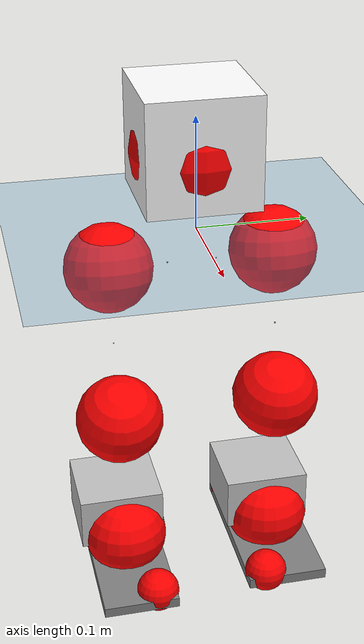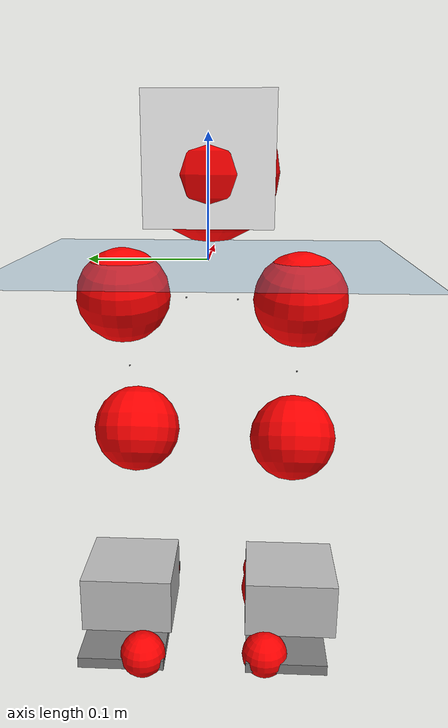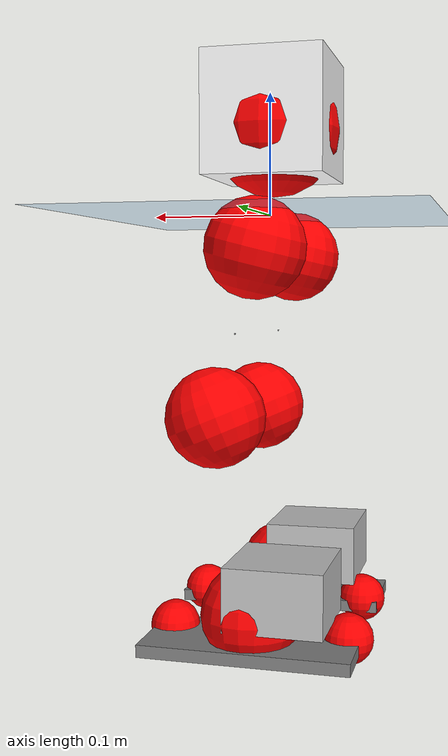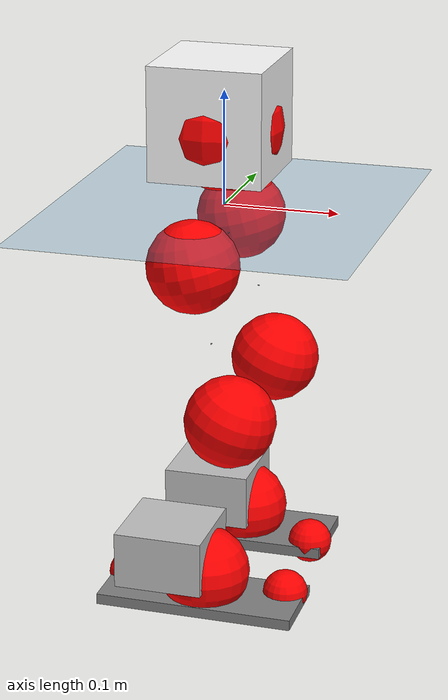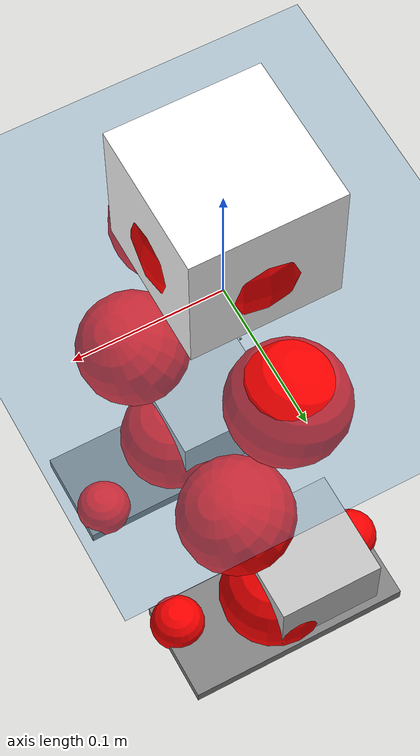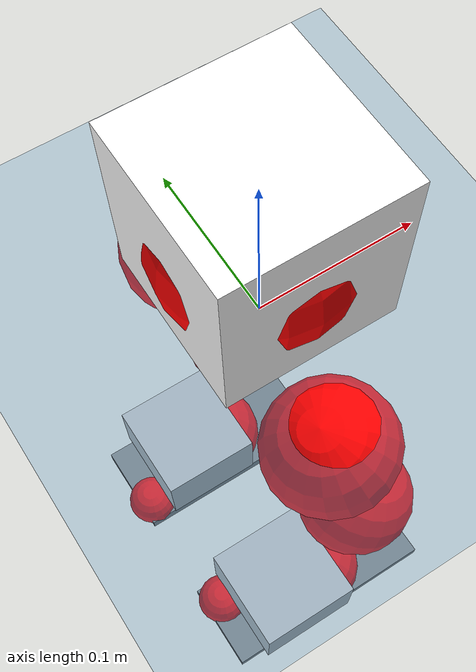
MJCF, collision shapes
<mujoco model="pi_12dof_release_v1">
  <compiler angle="radian" assetdir="assets" balanceinertia="true" inertiafromgeom="false"/>

  <option timestep="0.005" density="1.2" viscosity="2e-05"/>

  <size nkey="1"/>

  <visual>
    <quality shadowsize="8192"/>
    <map shadowclip="0.5"/>
  </visual>

  <default>
    <default class="/">
      <joint armature="0.01" damping="0.01" frictionloss="0.01"/>
      <geom contype="0" conaffinity="0" group="1" solref="-1000 -80"/>
      <site size="0.01 0.005 0.005" group="5"/>
      <general forcelimited="true" biastype="affine" gainprm="20" biasprm="0 -20 -0.5"/>
      <default class="foot">
        <geom size="0.0845 0.036 0.005" type="box" condim="6" group="4" priority="1" friction="0.9 0.2 0.2" solimp="0.015 1 0.005"/>
      </default>
      <default class="reward_collision_sphere">
        <geom group="5" rgba="1 0 0 1"/>
      </default>
    </default>
  </default>

  <asset>
    <texture type="skybox" colorspace="auto" name="//unnamed_texture_0" builtin="gradient" rgb1="0.95 0.95 0.95" rgb2="0.95 0.95 0.95" width="100" height="600"/>
    <texture type="2d" colorspace="auto" name="texplane" builtin="checker" rgb1="0.345 0.575 0.748" rgb2="0.345 0.575 0.748" markrgb="1 1 1" width="512" height="512"/>
    <material name="MatPlane" class="/" texture="texplane" texuniform="true" texrepeat="2 2" specular="0.9"/>
    <mesh name="baselink_1" class="/" file="baselink_1.STL"/>
    <mesh name="r_hip_pitch_link" class="/" file="r_hip_pitch_link.STL"/>
    <mesh name="r_hip_roll_link" class="/" file="r_hip_roll_link.STL"/>
    <mesh name="r_thigh_link" class="/" file="r_thigh_link.STL"/>
    <mesh name="r_calf_link" class="/" file="r_calf_link.STL"/>
    <mesh name="r_ankle_pitch_link" class="/" file="r_ankle_pitch_link.STL"/>
    <mesh name="r_ankle_roll_link" class="/" file="r_ankle_roll_link.STL"/>
    <mesh name="l_hip_pitch_link" class="/" file="l_hip_pitch_link.STL"/>
    <mesh name="l_hip_roll_link" class="/" file="l_hip_roll_link.STL"/>
    <mesh name="l_thigh_link" class="/" file="l_thigh_link.STL"/>
    <mesh name="l_calf_link" class="/" file="l_calf_link.STL"/>
    <mesh name="l_ankle_pitch_link" class="/" file="l_ankle_pitch_link.STL"/>
    <mesh name="l_ankle_roll_link" class="/" file="l_ankle_roll_link.STL"/>
  </asset>

  <worldbody>
    <geom name="floor" class="/" size="100 100 0.125" type="plane" group="0" material="MatPlane"/>
    <light name="toplight_shadow" class="/" pos="0 0 5" dir="0.0990148 0.0990148 -0.990148" type="directional" ambient="0.04 0.04 0.04" diffuse="0.55 0.55 0.55" specular="0.12 0.12 0.12"/>
    <light name="toplight_fill" class="/" pos="0 0 5" dir="0.0990148 0.0990148 -0.990148" type="directional" castshadow="false" ambient="0.04 0.04 0.04" diffuse="0.3 0.3 0.3" specular="0.08 0.08 0.08"/>
    <body name="trunk" pos="-0.00263948 -0.00234987 -0.000179137" quat="0.999999 0.00102221 9.93698e-05 0.000889017">
      <inertial pos="-5.82343e-05 0.00022092 0.039682" quat="0.695497 0.00923829 0.00929009 0.71841" mass="2.05345" diaginertia="0.0124041 0.005871 0.0041767"/>
      <joint name="//unnamed_joint_0" type="free"/>
      <geom name="//unnamed_geom_1" class="/" type="mesh" density="0" rgba="1 1 1 1" mesh="baselink_1"/>
      <geom name="//unnamed_geom_2" class="/" size="0.0493815 0.0493815 0.0493815" pos="0 0 0.0796137" type="box" rgba="1 1 1 1"/>
      <geom name="//unnamed_geom_3" class="reward_collision_sphere" size="0.0543196" pos="0 0 0.069662"/>
      <site name="imu" class="/" pos="0.00272683 -0.000296546 0.00384478" size="0.0098763"/>
      <camera name="track" class="/" pos="0 -1.83917 0" quat="0.707107 0.707107 0 0" mode="trackcom"/>
      <camera name="ego_camera" class="/" pos="0.07861 0 0.179131" quat="-0.5 -0.5 0.5 0.5"/>
      <body name="r_hip_pitch_link" pos="-0.00153289 -0.0223576 -0.0317611" quat="0.992338 -0.000284634 -0.123551 -0.000616897">
        <inertial pos="-0.00137774 -0.0534398 -0.000808257" quat="-0.0181765 0.705968 -0.0290434 0.707414" mass="0.372724" diaginertia="0.000143892 6.44474e-05 8.54073e-05"/>
        <joint name="r_hip_pitch_joint" class="/" pos="0 0 0" axis="-0.00108557 -0.999974 -0.00707432" range="-1.7458 1.24063" armature="0.00993048" damping="0.00871424" frictionloss="0.0110662"/>
        <geom name="//unnamed_geom_4" class="/" type="mesh" density="0" rgba="0.75294 0.75294 0.75294 1" mesh="r_hip_pitch_link"/>
        <geom name="//unnamed_geom_5" class="/" size="0.000493815 0.000493815 0.000493815" type="box" rgba="0.75294 0.75294 0.75294 1"/>
        <body name="r_hip_roll_link" pos="-2.07948e-05 -0.0522743 0.00032949" quat="1 6.19913e-06 -2.34883e-05 -1.15276e-05">
          <inertial pos="0.000935197 -0.000431191 -0.0581555" quat="0.705978 -0.0792704 -0.0825595 0.698925" mass="0.378191" diaginertia="0.000424418 0.000180933 0.000125094"/>
          <joint name="r_hip_roll_joint" class="/" pos="0 0 0" axis="-0.999999 0.000717426 -0.000734831" stiffness="0.00865469" range="-0.174907 0.51842" armature="0.00840223" damping="0" frictionloss="0.0101243"/>
          <geom name="//unnamed_geom_6" class="/" type="mesh" density="0" rgba="0.75294 0.75294 0.75294 1" mesh="r_hip_roll_link"/>
          <geom name="//unnamed_geom_7" class="/" size="0.000493815 0.000493815 0.000493815" type="box" rgba="0.75294 0.75294 0.75294 1"/>
          <geom name="//unnamed_geom_8" class="reward_collision_sphere" size="0.0395052"/>
          <body name="r_thigh_link" pos="-0.00105463 -0.00021366 -0.0680733" quat="0.999999 0.000735138 0.000762341 0.000113627">
            <inertial pos="0.00202172 0.00166558 -0.0497021" quat="0.739941 0.67254 -0.00967341 -0.00915601" mass="0.107494" diaginertia="0.000158636 6.30748e-05 5.49394e-05"/>
            <joint name="r_thigh_joint" class="/" pos="0 0 0" axis="-0.00157291 -0.0111663 -0.999936" range="-0.304985 0.636284" armature="0.00848429" damping="0.00666071" frictionloss="0.00980243"/>
            <geom name="//unnamed_geom_9" class="/" type="mesh" density="0" rgba="0.75294 0.75294 0.75294 1" mesh="r_thigh_link"/>
            <geom name="//unnamed_geom_10" class="/" size="0.000493815 0.000493815 0.000493815" type="box" rgba="0.75294 0.75294 0.75294 1"/>
            <body name="r_calf_link" pos="-0.000924367 0.00037464 -0.0707179" quat="0.947706 -0.000210957 0.319143 -0.000300829">
              <inertial pos="0.00224471 -0.00144744 -0.0696065" quat="0.999982 -0.00419502 0.00119985 0.00401023" mass="0.827562" diaginertia="0.00463986 0.00239886 0.000170935"/>
              <joint name="r_calf_joint" class="/" pos="0 0 0" axis="0.000289892 -0.999998 -0.0021279" stiffness="0.0114255" range="-1.65478 0.592195" armature="0.0111717" damping="1.76769e-05" frictionloss="0.011071"/>
              <geom name="//unnamed_geom_11" class="/" type="mesh" density="0" rgba="0.75294 0.75294 0.75294 1" mesh="r_calf_link"/>
              <geom name="//unnamed_geom_12" class="/" size="0.000493815 0.000493815 0.000493815" type="box" rgba="0.75294 0.75294 0.75294 1"/>
              <geom name="//unnamed_geom_13" class="reward_collision_sphere" size="0.0395052"/>
              <body name="r_ankle_pitch_link" pos="-0.000973011 0.00156326 -0.136497" quat="0.980242 0.000357008 -0.197797 0.000998191">
                <inertial pos="0.00254419 0.000977995 0.000354465" quat="0.00375949 0.707774 -0.00627689 0.706401" mass="0.164538" diaginertia="0.0003901 0.000144931 0.000113091"/>
                <joint name="r_ankle_pitch_joint" class="/" pos="0 0 0" axis="0.0037016 -0.999915 0.0125002" range="-1.35137 0.553476" armature="0.0104519" damping="0.00827169" frictionloss="0.00876176"/>
                <geom name="//unnamed_geom_14" class="/" type="mesh" density="0" rgba="0.75294 0.75294 0.75294 1" mesh="r_ankle_pitch_link"/>
                <geom name="//unnamed_geom_15" class="/" size="0.0385176 0.0395052 0.0246907" type="box" rgba="0.75294 0.75294 0.75294 1"/>
                <body name="r_ankle_roll_link" pos="0.0823088 0.003548 -1.27819e-05" quat="1 -0.000129976 4.91592e-05 -4.80075e-06">
                  <inertial pos="-0.0233287 1.09566e-05 -0.0138228" quat="0.563305 0.429103 0.43452 0.556553" mass="0.51157" diaginertia="0.00153198 0.000679977 0.000287262"/>
                  <joint name="r_ankle_roll_joint" class="/" pos="0 0 0" axis="-0.999946 -0.0103858 0.000936859" range="-0.143585 0.0960013" armature="0.00921594" damping="0" frictionloss="0.010114"/>
                  <geom name="//unnamed_geom_16" class="/" type="mesh" density="0" rgba="0.75294 0.75294 0.75294 1" mesh="r_ankle_roll_link"/>
                  <geom name="//unnamed_geom_17" class="/" type="mesh" rgba="0.75294 0.75294 0.75294 1" mesh="r_ankle_roll_link"/>
                  <geom name="right_foot" class="foot" size="0.0869349 0.0348838 0.00466215" pos="-0.0534548 0 -0.0437876"/>
                  <geom name="//unnamed_geom_19" class="reward_collision_sphere" size="0.0395052" pos="-0.0524067 0 -0.0199034"/>
                  <geom name="//unnamed_geom_20" class="reward_collision_sphere" size="0.0197526" pos="0.015722 0.0183917 -0.0398069"/>
                  <geom name="//unnamed_geom_21" class="reward_collision_sphere" size="0.0197526" pos="-0.125776 0.0183917 -0.0398069"/>
                  <site name="right_foot" class="foot" pos="-0.0534548 0 -0.0437876" size="0.0098763"/>
                </body>
              </body>
            </body>
          </body>
        </body>
      </body>
      <body name="l_hip_pitch_link" pos="0.000985936 0.02079 -0.0308062" quat="0.992114 0.000320051 -0.125334 0.000624865">
        <inertial pos="0.00350619 0.0505004 0.000271722" quat="-0.0386353 0.705615 0.0295573 0.706924" mass="0.371993" diaginertia="0.000162828 7.15326e-05 9.97339e-05"/>
        <joint name="l_hip_pitch_joint" class="/" pos="0 0 0" axis="-0.00200717 0.999991 0.00368236" range="-1.21299 1.76321" armature="0.0111637" damping="0" frictionloss="0.0100969"/>
        <geom name="//unnamed_geom_22" class="/" type="mesh" density="0" rgba="0.75294 0.75294 0.75294 1" mesh="l_hip_pitch_link"/>
        <geom name="//unnamed_geom_23" class="/" size="0.000493815 0.000493815 0.000493815" type="box" rgba="0.75294 0.75294 0.75294 1"/>
        <body name="l_hip_roll_link" pos="-0.00282088 0.0525139 0.00252955" quat="0.999999 0.000718703 0.000536303 -0.0010324">
          <inertial pos="-0.00131397 0.000547276 -0.0597732" quat="0.697782 -0.084566 -0.0678617 0.708056" mass="0.360834" diaginertia="0.000417256 0.000176231 0.00012475"/>
          <joint name="l_hip_roll_joint" class="/" pos="0 0 0" axis="-0.999999 0.000916307 -0.000454738" stiffness="0.00920547" range="-0.490355 0.111501" armature="0.0111714" damping="0" frictionloss="0.0104033"/>
          <geom name="//unnamed_geom_24" class="/" type="mesh" density="0" rgba="0.75294 0.75294 0.75294 1" mesh="l_hip_roll_link"/>
          <geom name="//unnamed_geom_25" class="/" size="0.000493815 0.000493815 0.000493815" type="box" rgba="0.75294 0.75294 0.75294 1"/>
          <geom name="//unnamed_geom_26" class="reward_collision_sphere" size="0.0395052"/>
          <body name="l_thigh_link" pos="-0.000441986 -0.000884226 -0.0676906" quat="1 2.41665e-05 2.43586e-05 -7.9634e-06">
            <inertial pos="0.000531007 -0.00171658 -0.0457265" quat="0.675423 0.73743 -0.000783155 0.000253274" mass="0.107941" diaginertia="0.000158609 6.2652e-05 5.64373e-05"/>
            <joint name="l_thigh_joint" class="/" pos="0 0 0" axis="-0.00560653 -0.0020498 -0.999982" range="-0.600063 0.320646" armature="0.00907134" damping="0.00178933" frictionloss="0.0103142"/>
            <geom name="//unnamed_geom_27" class="/" type="mesh" density="0" rgba="0.75294 0.75294 0.75294 1" mesh="l_thigh_link"/>
            <geom name="//unnamed_geom_28" class="/" size="0.000493815 0.000493815 0.000493815" type="box" rgba="0.75294 0.75294 0.75294 1"/>
            <body name="l_calf_link" pos="-0.000212403 -0.00267355 -0.0674933" quat="0.94782 -0.000616052 0.318804 -0.00103033">
              <inertial pos="0.00034823 0.00545337 -0.0701917" quat="0.999866 0.00827429 0.0125991 0.0063894" mass="0.778754" diaginertia="0.00451691 0.00234292 0.000168701"/>
              <joint name="l_calf_joint" class="/" pos="0 0 0" axis="-0.00436617 0.999987 0.00252408" range="-0.62796 1.63449" armature="0.00865676" damping="0.00935009" frictionloss="0.0111609"/>
              <geom name="//unnamed_geom_29" class="/" type="mesh" density="0" rgba="0.75294 0.75294 0.75294 1" mesh="l_calf_link"/>
              <geom name="//unnamed_geom_30" class="/" size="0.000493815 0.000493815 0.000493815" type="box" rgba="0.75294 0.75294 0.75294 1"/>
              <geom name="//unnamed_geom_31" class="reward_collision_sphere" size="0.0395052"/>
              <body name="l_ankle_pitch_link" pos="0.00109313 0.00016255 -0.142346" quat="0.980065 0.000107243 -0.198674 0.000359941">
                <inertial pos="0.00497401 -0.00202539 0.000444025" quat="-0.00240907 0.706433 0.00216818 0.707773" mass="0.167419" diaginertia="0.000387165 0.000145917 0.000112876"/>
                <joint name="l_ankle_pitch_joint" class="/" pos="0 0 0" axis="0.0045411 0.999988 -0.00169777" stiffness="0.00339036" range="-0.481808 1.30703" armature="0.00987786" damping="0.00812195" frictionloss="0.0101174"/>
                <geom name="//unnamed_geom_32" class="/" type="mesh" density="0" rgba="0.75294 0.75294 0.75294 1" mesh="l_ankle_pitch_link"/>
                <geom name="//unnamed_geom_33" class="/" size="0.0385176 0.0395052 0.0246907" type="box" rgba="0.75294 0.75294 0.75294 1"/>
                <body name="l_ankle_roll_link" pos="0.0769993 0.00310141 -4.16724e-05" quat="1 -0.000207449 0.000491041 0.00026133">
                  <inertial pos="-0.022961 -0.0010072 -0.0130192" quat="0.559813 0.431426 0.43413 0.558581" mass="0.498387" diaginertia="0.00141103 0.000636239 0.00027494"/>
                  <joint name="l_ankle_roll_joint" class="/" pos="0 0 0" axis="-0.999898 -0.00615029 -0.0128743" range="-0.139005 0.151132" armature="0.00990759" damping="0.0159791" frictionloss="0.0094328"/>
                  <geom name="//unnamed_geom_34" class="/" type="mesh" density="0" rgba="0.75294 0.75294 0.75294 1" mesh="l_ankle_roll_link"/>
                  <geom name="//unnamed_geom_35" class="/" type="mesh" rgba="0.75294 0.75294 0.75294 1" mesh="l_ankle_roll_link"/>
                  <geom name="left_foot" class="foot" size="0.0824791 0.0372414 0.00485339" pos="-0.0534548 0 -0.0437876"/>
                  <geom name="//unnamed_geom_37" class="reward_collision_sphere" size="0.0395052" pos="-0.0524067 0 -0.0199034"/>
                  <geom name="//unnamed_geom_38" class="reward_collision_sphere" size="0.0197526" pos="0.015722 -0.0183917 -0.0398069"/>
                  <geom name="//unnamed_geom_39" class="reward_collision_sphere" size="0.0197526" pos="-0.125776 -0.0183917 -0.0398069"/>
                  <site name="left_foot" class="foot" pos="-0.0534548 0 -0.0437876" size="0.0098763"/>
                </body>
              </body>
            </body>
          </body>
        </body>
      </body>
    </body>
  </worldbody>

  <contact>
    <pair class="/" geom1="floor" geom2="right_foot" name="//unnamed_contact_1"/>
    <pair class="/" geom1="floor" geom2="left_foot" name="//unnamed_contact_0"/>
  </contact>

  <actuator>
    <general name="r_hip_pitch_joint" class="/" joint="r_hip_pitch_joint" forcerange="-21.5858 21.5858" gainprm="19.3384" biasprm="0 -19.3384 -0.478093"/>
    <general name="r_hip_roll_joint" class="/" joint="r_hip_roll_joint" forcerange="-20.7746 20.7746" gainprm="19.3384" biasprm="0 -19.3384 -0.478093"/>
    <general name="r_thigh_joint" class="/" joint="r_thigh_joint" forcerange="-21.0169 21.0169" gainprm="19.3384" biasprm="0 -19.3384 -0.478093"/>
    <general name="r_calf_joint" class="/" joint="r_calf_joint" forcerange="-21.5529 21.5529" gainprm="19.3384" biasprm="0 -19.3384 -0.478093"/>
    <general name="r_ankle_pitch_joint" class="/" joint="r_ankle_pitch_joint" forcerange="-19.8776 19.8776" gainprm="19.3384" biasprm="0 -19.3384 -0.478093"/>
    <general name="r_ankle_roll_joint" class="/" joint="r_ankle_roll_joint" forcerange="-21.5785 21.5785" gainprm="19.3384" biasprm="0 -19.3384 -0.478093"/>
    <general name="l_hip_pitch_joint" class="/" joint="l_hip_pitch_joint" forcerange="-20.5251 20.5251" gainprm="19.3384" biasprm="0 -19.3384 -0.478093"/>
    <general name="l_hip_roll_joint" class="/" joint="l_hip_roll_joint" forcerange="-19.8087 19.8087" gainprm="19.3384" biasprm="0 -19.3384 -0.478093"/>
    <general name="l_thigh_joint" class="/" joint="l_thigh_joint" forcerange="-20.6249 20.6249" gainprm="19.3384" biasprm="0 -19.3384 -0.478093"/>
    <general name="l_calf_joint" class="/" joint="l_calf_joint" forcerange="-22.593 22.593" gainprm="19.3384" biasprm="0 -19.3384 -0.478093"/>
    <general name="l_ankle_pitch_joint" class="/" joint="l_ankle_pitch_joint" forcerange="-20.5771 20.5771" gainprm="19.3384" biasprm="0 -19.3384 -0.478093"/>
    <general name="l_ankle_roll_joint" class="/" joint="l_ankle_roll_joint" forcerange="-18.762 18.762" gainprm="19.3384" biasprm="0 -19.3384 -0.478093"/>
  </actuator>

  <sensor>
    <gyro site="imu" name="imu_angular_velocity"/>
    <velocimeter site="imu" name="imu_linear_velocity"/>
    <framelinvel objtype="site" objname="left_foot" name="left_foot_global_linear_velocity"/>
    <framelinvel objtype="site" objname="right_foot" name="right_foot_global_linear_velocity"/>
  </sensor>

  <keyframe>
    <key name="home" qpos="0 0 0.291 1 0 0 0 0.4 0 0 -0.8 0.4 0 -0.4 0 0 0.8 -0.4 0"/>
  </keyframe>
</mujoco>
